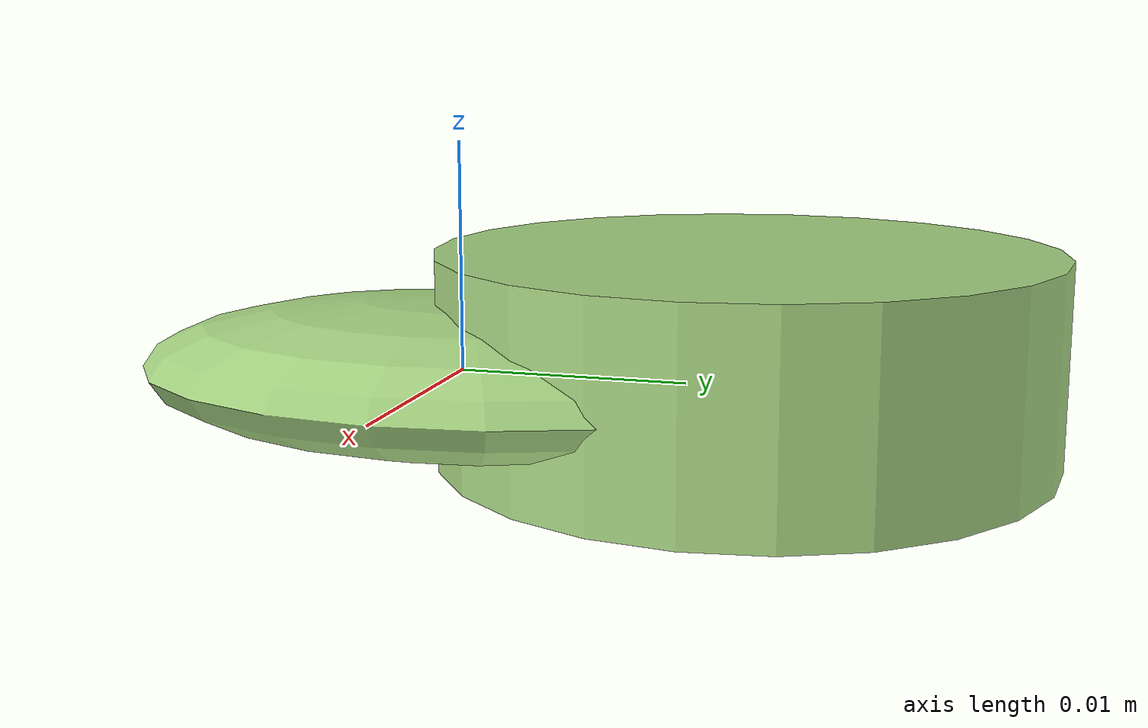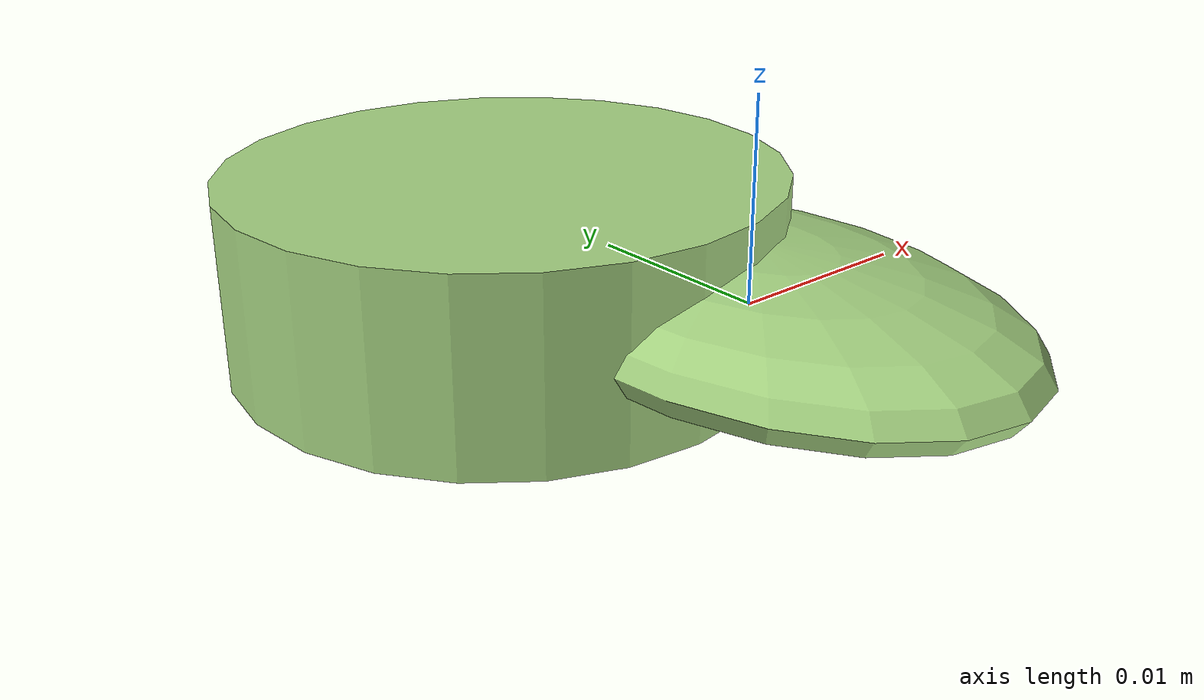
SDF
<?xml version="1.0" ?>
<!-- |    This document was autogenerated by xmacro from data/veggie_template/veggie_base.sdf.xacro  | -->
<!-- |    EDITING THIS FILE BY HAND IS NOT RECOMMENDED                                               | -->
<sdf version="1.8">
	<!-- Parameters -->
	<!-- Base -->
	<!-- Joint 0 -->
	<!-- Link 1 -->
	<!-- Joint 1 -->
	<!-- Link 2 -->
	<!-- Primitives -->
	<!-- All dimensions are half -->
	<!-- Object -->
	<model name="veggie">
		<!-- link0 -->
		<link name="link0">
			<inertial>
				<mass>0.0019705939489351367</mass>
				<inertia>
					<ixx>8.975959162119349e-08</ixx>
					<ixy>0</ixy>
					<ixz>0</ixz>
					<iyy>4.3437258443032824e-08</iyy>
					<iyz>0</iyz>
					<izz>1.2518284483444647e-07</izz>
				</inertia>
			</inertial>
			<visual name="link0_visual">
				<pose>0 0 0 0 0 0</pose>
				<geometry>
					<ellipsoid>
						<radii>0.010002331112882767 0.014750612364240353 0.003188572106976014</radii>
					</ellipsoid>
				</geometry>
				<material>
					<ambient>0.659 0.839 0.514 1</ambient>
					<diffuse>0.659 0.839 0.514 1</diffuse>
					<specular>0 0 0 0</specular>
					<emissive>0 0 0 1</emissive>
				</material>
			</visual>
			<collision name="link0_collision">
				<pose>0 0 0 0 0 0 </pose>
				<geometry>
					<ellipsoid>
						<radii>0.010002331112882767 0.014750612364240353 0.003188572106976014</radii>
					</ellipsoid>
				</geometry>
			</collision>
		</link>
		<!-- link1 -->
		<joint name="joint0" type="fixed">
			<pose relative_to="link0">-0.005474811976485571 0.011549946394609746 0.00035933143261713787 0.0 0.0 0.0</pose>
			<parent>link0</parent>
			<child>link1</child>
		</joint>
		<link name="link1">
			<pose relative_to="joint0">0 0 0 0 0 0</pose>
			<inertial>
				<mass>0.005797326874987278</mass>
				<inertia>
					<ixx>3.289273759143855e-07</ixx>
					<ixy>0</ixy>
					<ixz>0</ixz>
					<iyy>3.289273759143855e-07</iyy>
					<iyz>0</iyz>
					<izz>5.739250824710352e-07</izz>
				</inertia>
			</inertial>
			<visual name="link1_visual">
				<pose>0 0 0 0 0 0</pose>
				<geometry>
					<cylinder>
						<radius>0.014071121283508268</radius>
						<length>0.009320076716636112</length>
					</cylinder>
				</geometry>
				<material>
					<ambient>0.659 0.839 0.514 1</ambient>
					<diffuse>0.659 0.839 0.514 1</diffuse>
					<specular>0 0 0 0</specular>
					<emissive>0 0 0 1</emissive>
				</material>
			</visual>
			<collision name="link1_collision">
				<pose>0 0 0 0 0 0 </pose>
				<geometry>
					<cylinder>
						<radius>0.014071121283508268</radius>
						<length>0.009320076716636112</length>
					</cylinder>
				</geometry>
			</collision>
		</link>
		<!-- link2 -->
	</model>
</sdf>
